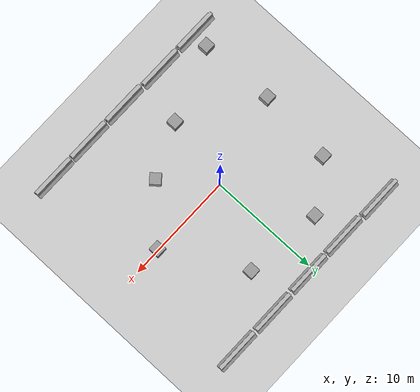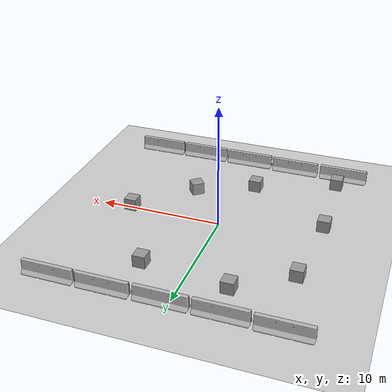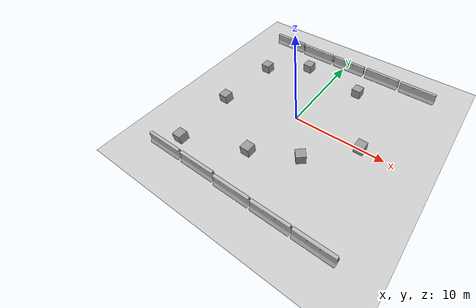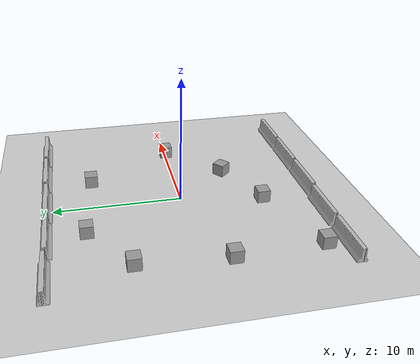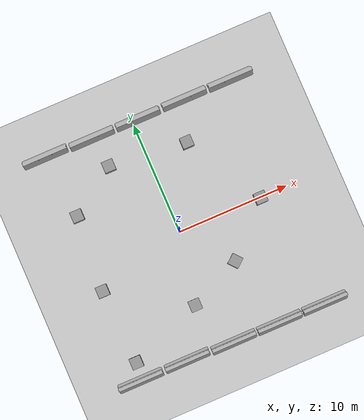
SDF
<sdf version="1.4">
 <world name="default">
  <model name="ground_plane">
   <static>1</static>
   <link name="link">
    <collision name="collision">
     <geometry><plane><normal>0 0 1</normal><size>100 100</size></plane></geometry>
     <surface><friction><ode><mu>100</mu><mu2>50</mu2></ode></friction></surface>
    </collision>
    <visual name="visual">
     <cast_shadows>0</cast_shadows>
     <geometry><plane><normal>0 0 1</normal><size>100 100</size></plane></geometry>
     <material>
      <script><uri>file://media/materials/scripts/gazebo.material</uri><name>Gazebo/Grey</name></script>
     </material>
    </visual>
    <velocity_decay><linear>0</linear><angular>0</angular></velocity_decay>
   </link>
  </model>
  <light name="sun" type="directional">
   <pose>0 0 10 0 -0 0</pose>
   <diffuse>0.8 0.8 0.8 1</diffuse>
   <specular>0.2 0.2 0.2 1</specular>
   <attenuation>
    <range>1000</range>
    <constant>0.9</constant>
    <linear>0.01</linear>
    <quadratic>0.001</quadratic>
   </attenuation>
   <direction>-0.5 0.1 -0.9</direction>
  </light>
  <physics type="ode">
   <max_step_size>0.001</max_step_size>
   <real_time_factor>1</real_time_factor>
   <real_time_update_rate>1000</real_time_update_rate>
   <gravity>0 0 -9.8</gravity>
  </physics>
  <scene><ambient>0.4 0.4 0.4 1</ambient><background>0.7 0.7 0.7 1</background><shadows>1</shadows></scene>
  <spherical_coordinates>
   <surface_model>EARTH_WGS84</surface_model>
   <latitude_deg>0</latitude_deg>
   <longitude_deg>0</longitude_deg>
   <elevation>0</elevation>
   <heading_deg>0</heading_deg>
  </spherical_coordinates>
  <model name="cube_obstacle_4">
   <pose>3.36752 -4.17019 0.5 -3.14159 -0 0.690147</pose>
   <link name="link">
    <inertial>
     <mass>1</mass>
     <inertia><ixx>1</ixx><ixy>0</ixy><ixz>0</ixz><iyy>1</iyy><iyz>0</iyz><izz>1</izz></inertia>
    </inertial>
    <collision name="collision"><geometry><box><size>1 1 1</size></box></geometry></collision>
    <visual name="visual">
     <geometry><box><size>1 1 1</size></box></geometry>
     <material>
      <script><uri>file://media/materials/scripts/gazebo.material</uri><name>Gazebo/Grey</name></script>
     </material>
    </visual>
    <velocity_decay><linear>0</linear><angular>0</angular></velocity_decay>
   </link>
   <static>0</static>
  </model>
  <model name="cube_obstacle_6">
   <pose>-7.79276 -8.76821 0.5 0 -0 -0.000295</pose>
   <link name="link">
    <inertial>
     <mass>1</mass>
     <inertia><ixx>1</ixx><ixy>0</ixy><ixz>0</ixz><iyy>1</iyy><iyz>0</iyz><izz>1</izz></inertia>
    </inertial>
    <collision name="collision"><geometry><box><size>1 1 1</size></box></geometry></collision>
    <visual name="visual">
     <geometry><box><size>1 1 1</size></box></geometry>
     <material>
      <script><uri>file://media/materials/scripts/gazebo.material</uri><name>Gazebo/Grey</name></script>
     </material>
    </visual>
    <velocity_decay><linear>0</linear><angular>0</angular></velocity_decay>
   </link>
   <static>0</static>
  </model>
  <model name="cube_obstacle_7">
   <pose>7.48958 -0.05849 0.5 0 -0 -0.001563</pose>
   <link name="link">
    <inertial>
     <mass>1</mass>
     <inertia><ixx>1</ixx><ixy>0</ixy><ixz>0</ixz><iyy>1</iyy><iyz>0</iyz><izz>1</izz></inertia>
    </inertial>
    <collision name="collision"><geometry><box><size>1 1 1</size></box></geometry></collision>
    <visual name="visual">
     <geometry><box><size>1 1 1</size></box></geometry>
     <material>
      <script><uri>file://media/materials/scripts/gazebo.material</uri><name>Gazebo/Grey</name></script>
     </material>
    </visual>
    <velocity_decay><linear>0</linear><angular>0</angular></velocity_decay>
   </link>
   <static>0</static>
  </model>
  <model name="cube_obstacle_8">
   <pose>-7.51802 4.68894 0.5 0 -0 -0.001581</pose>
   <link name="link">
    <inertial>
     <mass>1</mass>
     <inertia><ixx>1</ixx><ixy>0</ixy><ixz>0</ixz><iyy>1</iyy><iyz>0</iyz><izz>1</izz></inertia>
    </inertial>
    <collision name="collision"><geometry><box><size>1 1 1</size></box></geometry></collision>
    <visual name="visual">
     <geometry><box><size>1 1 1</size></box></geometry>
     <material>
      <script><uri>file://media/materials/scripts/gazebo.material</uri><name>Gazebo/Grey</name></script>
     </material>
    </visual>
    <velocity_decay><linear>0</linear><angular>0</angular></velocity_decay>
   </link>
   <static>0</static>
  </model>
  <model name="cube_obstacle_9">
   <pose>3.58711 6.81485 0.499996 -3.14159 4e-06 1.57</pose>
   <link name="link">
    <inertial>
     <mass>1</mass>
     <inertia><ixx>1</ixx><ixy>0</ixy><ixz>0</ixz><iyy>1</iyy><iyz>0</iyz><izz>1</izz></inertia>
    </inertial>
    <collision name="collision"><geometry><box><size>1 1 1</size></box></geometry></collision>
    <visual name="visual">
     <geometry><box><size>1 1 1</size></box></geometry>
     <material>
      <script><uri>file://media/materials/scripts/gazebo.material</uri><name>Gazebo/Grey</name></script>
     </material>
    </visual>
    <velocity_decay><linear>0</linear><angular>0</angular></velocity_decay>
   </link>
   <static>0</static>
  </model>
  <model name="cube_obstacle_10">
   <pose>-8.04647 -2.06016 0.5 0 -0 0</pose>
   <link name="link">
    <inertial>
     <mass>1</mass>
     <inertia><ixx>1</ixx><ixy>0</ixy><ixz>0</ixz><iyy>1</iyy><iyz>0</iyz><izz>1</izz></inertia>
    </inertial>
    <collision name="collision"><geometry><box><size>1 1 1</size></box></geometry></collision>
    <visual name="visual">
     <geometry><box><size>1 1 1</size></box></geometry>
     <material>
      <script><uri>file://media/materials/scripts/gazebo.material</uri><name>Gazebo/Grey</name></script>
     </material>
    </visual>
    <velocity_decay><linear>0</linear><angular>0</angular></velocity_decay>
   </link>
   <static>0</static>
  </model>
  <model name="cube_obstacle_11">
   <pose>-3.36093 7.55999 0.5 0 -0 0</pose>
   <link name="link">
    <inertial>
     <mass>1</mass>
     <inertia><ixx>1</ixx><ixy>0</ixy><ixz>0</ixz><iyy>1</iyy><iyz>0</iyz><izz>1</izz></inertia>
    </inertial>
    <collision name="collision"><geometry><box><size>1 1 1</size></box></geometry></collision>
    <visual name="visual">
     <geometry><box><size>1 1 1</size></box></geometry>
     <material>
      <script><uri>file://media/materials/scripts/gazebo.material</uri><name>Gazebo/Grey</name></script>
     </material>
    </visual>
    <velocity_decay><linear>0</linear><angular>0</angular></velocity_decay>
   </link>
   <static>0</static>
  </model>
  <model name="cube_obstacle_12">
   <pose>-1.27319 -6.27397 0.5 0 -0 0</pose>
   <link name="link">
    <inertial>
     <mass>1</mass>
     <inertia><ixx>1</ixx><ixy>0</ixy><ixz>0</ixz><iyy>1</iyy><iyz>0</iyz><izz>1</izz></inertia>
    </inertial>
    <collision name="collision"><geometry><box><size>1 1 1</size></box></geometry></collision>
    <visual name="visual">
     <geometry><box><size>1 1 1</size></box></geometry>
     <material>
      <script><uri>file://media/materials/scripts/gazebo.material</uri><name>Gazebo/Grey</name></script>
     </material>
    </visual>
    <velocity_decay><linear>0</linear><angular>0</angular></velocity_decay>
   </link>
   <static>0</static>
  </model>
  <model name="jersey_barrier">
   <static>1</static>
   <link name="link">
    <visual name="visual">
     <geometry><mesh><uri>model://jersey_barrier/meshes/jersey_barrier.dae</uri></mesh></geometry>
    </visual>
    <collision name="upright">
     <pose>0 0 0.5715 0 -0 0</pose>
     <geometry><box><size>4.06542 0.3063 1.143</size></box></geometry>
    </collision>
    <collision name="base">
     <pose>0 0 0.032258 0 -0 0</pose>
     <geometry><box><size>4.06542 0.8107 0.064516</size></box></geometry>
    </collision>
    <collision name="base2">
     <pose>0 0 0.1 0 -0 0</pose>
     <geometry><box><size>4.06542 0.65 0.1</size></box></geometry>
    </collision>
    <collision name="base3">
     <pose>0 0 0.2 0 -0 0</pose>
     <geometry><box><size>4.06542 0.5 0.1</size></box></geometry>
    </collision>
    <collision name="left-angle">
     <pose>0 -0.224 0.2401 0.9 -0 0</pose>
     <geometry><box><size>4.06542 0.5 0.064516</size></box></geometry>
    </collision>
    <collision name="right-angle">
     <pose>0 0.224 0.2401 -0.9 0 0</pose>
     <geometry><box><size>4.06542 0.5 0.064516</size></box></geometry>
    </collision>
    <velocity_decay><linear>0</linear><angular>0</angular></velocity_decay>
   </link>
   <pose>8.96615 -10.4779 0 0 -0 0</pose>
  </model>
  <model name="jersey_barrier_0">
   <static>1</static>
   <link name="link">
    <visual name="visual">
     <geometry><mesh><uri>model://jersey_barrier/meshes/jersey_barrier.dae</uri></mesh></geometry>
    </visual>
    <collision name="upright">
     <pose>0 0 0.5715 0 -0 0</pose>
     <geometry><box><size>4.06542 0.3063 1.143</size></box></geometry>
    </collision>
    <collision name="base">
     <pose>0 0 0.032258 0 -0 0</pose>
     <geometry><box><size>4.06542 0.8107 0.064516</size></box></geometry>
    </collision>
    <collision name="base2">
     <pose>0 0 0.1 0 -0 0</pose>
     <geometry><box><size>4.06542 0.65 0.1</size></box></geometry>
    </collision>
    <collision name="base3">
     <pose>0 0 0.2 0 -0 0</pose>
     <geometry><box><size>4.06542 0.5 0.1</size></box></geometry>
    </collision>
    <collision name="left-angle">
     <pose>0 -0.224 0.2401 0.9 -0 0</pose>
     <geometry><box><size>4.06542 0.5 0.064516</size></box></geometry>
    </collision>
    <collision name="right-angle">
     <pose>0 0.224 0.2401 -0.9 0 0</pose>
     <geometry><box><size>4.06542 0.5 0.064516</size></box></geometry>
    </collision>
    <velocity_decay><linear>0</linear><angular>0</angular></velocity_decay>
   </link>
   <pose>-3.75163 10.4025 0 0 -0 0</pose>
  </model>
  <model name="jersey_barrier_1">
   <static>1</static>
   <link name="link">
    <visual name="visual">
     <geometry><mesh><uri>model://jersey_barrier/meshes/jersey_barrier.dae</uri></mesh></geometry>
    </visual>
    <collision name="upright">
     <pose>0 0 0.5715 0 -0 0</pose>
     <geometry><box><size>4.06542 0.3063 1.143</size></box></geometry>
    </collision>
    <collision name="base">
     <pose>0 0 0.032258 0 -0 0</pose>
     <geometry><box><size>4.06542 0.8107 0.064516</size></box></geometry>
    </collision>
    <collision name="base2">
     <pose>0 0 0.1 0 -0 0</pose>
     <geometry><box><size>4.06542 0.65 0.1</size></box></geometry>
    </collision>
    <collision name="base3">
     <pose>0 0 0.2 0 -0 0</pose>
     <geometry><box><size>4.06542 0.5 0.1</size></box></geometry>
    </collision>
    <collision name="left-angle">
     <pose>0 -0.224 0.2401 0.9 -0 0</pose>
     <geometry><box><size>4.06542 0.5 0.064516</size></box></geometry>
    </collision>
    <collision name="right-angle">
     <pose>0 0.224 0.2401 -0.9 0 0</pose>
     <geometry><box><size>4.06542 0.5 0.064516</size></box></geometry>
    </collision>
    <velocity_decay><linear>0</linear><angular>0</angular></velocity_decay>
   </link>
   <pose>4.87948 10.4278 0 0 -0 0</pose>
  </model>
  <model name="jersey_barrier_2">
   <static>1</static>
   <link name="link">
    <visual name="visual">
     <geometry><mesh><uri>model://jersey_barrier/meshes/jersey_barrier.dae</uri></mesh></geometry>
    </visual>
    <collision name="upright">
     <pose>0 0 0.5715 0 -0 0</pose>
     <geometry><box><size>4.06542 0.3063 1.143</size></box></geometry>
    </collision>
    <collision name="base">
     <pose>0 0 0.032258 0 -0 0</pose>
     <geometry><box><size>4.06542 0.8107 0.064516</size></box></geometry>
    </collision>
    <collision name="base2">
     <pose>0 0 0.1 0 -0 0</pose>
     <geometry><box><size>4.06542 0.65 0.1</size></box></geometry>
    </collision>
    <collision name="base3">
     <pose>0 0 0.2 0 -0 0</pose>
     <geometry><box><size>4.06542 0.5 0.1</size></box></geometry>
    </collision>
    <collision name="left-angle">
     <pose>0 -0.224 0.2401 0.9 -0 0</pose>
     <geometry><box><size>4.06542 0.5 0.064516</size></box></geometry>
    </collision>
    <collision name="right-angle">
     <pose>0 0.224 0.2401 -0.9 0 0</pose>
     <geometry><box><size>4.06542 0.5 0.064516</size></box></geometry>
    </collision>
    <velocity_decay><linear>0</linear><angular>0</angular></velocity_decay>
   </link>
   <pose>0.535563 10.3988 0 0 -0 0</pose>
  </model>
  <model name="jersey_barrier_3">
   <static>1</static>
   <link name="link">
    <visual name="visual">
     <geometry><mesh><uri>model://jersey_barrier/meshes/jersey_barrier.dae</uri></mesh></geometry>
    </visual>
    <collision name="upright">
     <pose>0 0 0.5715 0 -0 0</pose>
     <geometry><box><size>4.06542 0.3063 1.143</size></box></geometry>
    </collision>
    <collision name="base">
     <pose>0 0 0.032258 0 -0 0</pose>
     <geometry><box><size>4.06542 0.8107 0.064516</size></box></geometry>
    </collision>
    <collision name="base2">
     <pose>0 0 0.1 0 -0 0</pose>
     <geometry><box><size>4.06542 0.65 0.1</size></box></geometry>
    </collision>
    <collision name="base3">
     <pose>0 0 0.2 0 -0 0</pose>
     <geometry><box><size>4.06542 0.5 0.1</size></box></geometry>
    </collision>
    <collision name="left-angle">
     <pose>0 -0.224 0.2401 0.9 -0 0</pose>
     <geometry><box><size>4.06542 0.5 0.064516</size></box></geometry>
    </collision>
    <collision name="right-angle">
     <pose>0 0.224 0.2401 -0.9 0 0</pose>
     <geometry><box><size>4.06542 0.5 0.064516</size></box></geometry>
    </collision>
    <velocity_decay><linear>0</linear><angular>0</angular></velocity_decay>
   </link>
   <pose>9.17759 10.3991 0 0 -0 0</pose>
  </model>
  <model name="jersey_barrier_4">
   <static>1</static>
   <link name="link">
    <visual name="visual">
     <geometry><mesh><uri>model://jersey_barrier/meshes/jersey_barrier.dae</uri></mesh></geometry>
    </visual>
    <collision name="upright">
     <pose>0 0 0.5715 0 -0 0</pose>
     <geometry><box><size>4.06542 0.3063 1.143</size></box></geometry>
    </collision>
    <collision name="base">
     <pose>0 0 0.032258 0 -0 0</pose>
     <geometry><box><size>4.06542 0.8107 0.064516</size></box></geometry>
    </collision>
    <collision name="base2">
     <pose>0 0 0.1 0 -0 0</pose>
     <geometry><box><size>4.06542 0.65 0.1</size></box></geometry>
    </collision>
    <collision name="base3">
     <pose>0 0 0.2 0 -0 0</pose>
     <geometry><box><size>4.06542 0.5 0.1</size></box></geometry>
    </collision>
    <collision name="left-angle">
     <pose>0 -0.224 0.2401 0.9 -0 0</pose>
     <geometry><box><size>4.06542 0.5 0.064516</size></box></geometry>
    </collision>
    <collision name="right-angle">
     <pose>0 0.224 0.2401 -0.9 0 0</pose>
     <geometry><box><size>4.06542 0.5 0.064516</size></box></geometry>
    </collision>
    <velocity_decay><linear>0</linear><angular>0</angular></velocity_decay>
   </link>
   <pose>4.7547 -10.4781 0 0 -0 0</pose>
  </model>
  <model name="jersey_barrier_5">
   <static>1</static>
   <link name="link">
    <visual name="visual">
     <geometry><mesh><uri>model://jersey_barrier/meshes/jersey_barrier.dae</uri></mesh></geometry>
    </visual>
    <collision name="upright">
     <pose>0 0 0.5715 0 -0 0</pose>
     <geometry><box><size>4.06542 0.3063 1.143</size></box></geometry>
    </collision>
    <collision name="base">
     <pose>0 0 0.032258 0 -0 0</pose>
     <geometry><box><size>4.06542 0.8107 0.064516</size></box></geometry>
    </collision>
    <collision name="base2">
     <pose>0 0 0.1 0 -0 0</pose>
     <geometry><box><size>4.06542 0.65 0.1</size></box></geometry>
    </collision>
    <collision name="base3">
     <pose>0 0 0.2 0 -0 0</pose>
     <geometry><box><size>4.06542 0.5 0.1</size></box></geometry>
    </collision>
    <collision name="left-angle">
     <pose>0 -0.224 0.2401 0.9 -0 0</pose>
     <geometry><box><size>4.06542 0.5 0.064516</size></box></geometry>
    </collision>
    <collision name="right-angle">
     <pose>0 0.224 0.2401 -0.9 0 0</pose>
     <geometry><box><size>4.06542 0.5 0.064516</size></box></geometry>
    </collision>
    <velocity_decay><linear>0</linear><angular>0</angular></velocity_decay>
   </link>
   <pose>0.517668 -10.4596 0 0 -0 0</pose>
  </model>
  <model name="jersey_barrier_6">
   <static>1</static>
   <link name="link">
    <visual name="visual">
     <geometry><mesh><uri>model://jersey_barrier/meshes/jersey_barrier.dae</uri></mesh></geometry>
    </visual>
    <collision name="upright">
     <pose>0 0 0.5715 0 -0 0</pose>
     <geometry><box><size>4.06542 0.3063 1.143</size></box></geometry>
    </collision>
    <collision name="base">
     <pose>0 0 0.032258 0 -0 0</pose>
     <geometry><box><size>4.06542 0.8107 0.064516</size></box></geometry>
    </collision>
    <collision name="base2">
     <pose>0 0 0.1 0 -0 0</pose>
     <geometry><box><size>4.06542 0.65 0.1</size></box></geometry>
    </collision>
    <collision name="base3">
     <pose>0 0 0.2 0 -0 0</pose>
     <geometry><box><size>4.06542 0.5 0.1</size></box></geometry>
    </collision>
    <collision name="left-angle">
     <pose>0 -0.224 0.2401 0.9 -0 0</pose>
     <geometry><box><size>4.06542 0.5 0.064516</size></box></geometry>
    </collision>
    <collision name="right-angle">
     <pose>0 0.224 0.2401 -0.9 0 0</pose>
     <geometry><box><size>4.06542 0.5 0.064516</size></box></geometry>
    </collision>
    <velocity_decay><linear>0</linear><angular>0</angular></velocity_decay>
   </link>
   <pose>-3.7617 -10.3296 0 0 -0 0</pose>
  </model>
  <model name="jersey_barrier_7">
   <static>1</static>
   <link name="link">
    <visual name="visual">
     <geometry><mesh><uri>model://jersey_barrier/meshes/jersey_barrier.dae</uri></mesh></geometry>
    </visual>
    <collision name="upright">
     <pose>0 0 0.5715 0 -0 0</pose>
     <geometry><box><size>4.06542 0.3063 1.143</size></box></geometry>
    </collision>
    <collision name="base">
     <pose>0 0 0.032258 0 -0 0</pose>
     <geometry><box><size>4.06542 0.8107 0.064516</size></box></geometry>
    </collision>
    <collision name="base2">
     <pose>0 0 0.1 0 -0 0</pose>
     <geometry><box><size>4.06542 0.65 0.1</size></box></geometry>
    </collision>
    <collision name="base3">
     <pose>0 0 0.2 0 -0 0</pose>
     <geometry><box><size>4.06542 0.5 0.1</size></box></geometry>
    </collision>
    <collision name="left-angle">
     <pose>0 -0.224 0.2401 0.9 -0 0</pose>
     <geometry><box><size>4.06542 0.5 0.064516</size></box></geometry>
    </collision>
    <collision name="right-angle">
     <pose>0 0.224 0.2401 -0.9 0 0</pose>
     <geometry><box><size>4.06542 0.5 0.064516</size></box></geometry>
    </collision>
    <velocity_decay><linear>0</linear><angular>0</angular></velocity_decay>
   </link>
   <pose>-8.06694 -10.3295 0 0 -0 0</pose>
  </model>
  <model name="jersey_barrier_8">
   <static>1</static>
   <link name="link">
    <visual name="visual">
     <geometry><mesh><uri>model://jersey_barrier/meshes/jersey_barrier.dae</uri></mesh></geometry>
    </visual>
    <collision name="upright">
     <pose>0 0 0.5715 0 -0 0</pose>
     <geometry><box><size>4.06542 0.3063 1.143</size></box></geometry>
    </collision>
    <collision name="base">
     <pose>0 0 0.032258 0 -0 0</pose>
     <geometry><box><size>4.06542 0.8107 0.064516</size></box></geometry>
    </collision>
    <collision name="base2">
     <pose>0 0 0.1 0 -0 0</pose>
     <geometry><box><size>4.06542 0.65 0.1</size></box></geometry>
    </collision>
    <collision name="base3">
     <pose>0 0 0.2 0 -0 0</pose>
     <geometry><box><size>4.06542 0.5 0.1</size></box></geometry>
    </collision>
    <collision name="left-angle">
     <pose>0 -0.224 0.2401 0.9 -0 0</pose>
     <geometry><box><size>4.06542 0.5 0.064516</size></box></geometry>
    </collision>
    <collision name="right-angle">
     <pose>0 0.224 0.2401 -0.9 0 0</pose>
     <geometry><box><size>4.06542 0.5 0.064516</size></box></geometry>
    </collision>
    <velocity_decay><linear>0</linear><angular>0</angular></velocity_decay>
   </link>
   <pose>-8.05563 10.5199 0 0 -0 0</pose>
  </model>
 </world>
</sdf>
